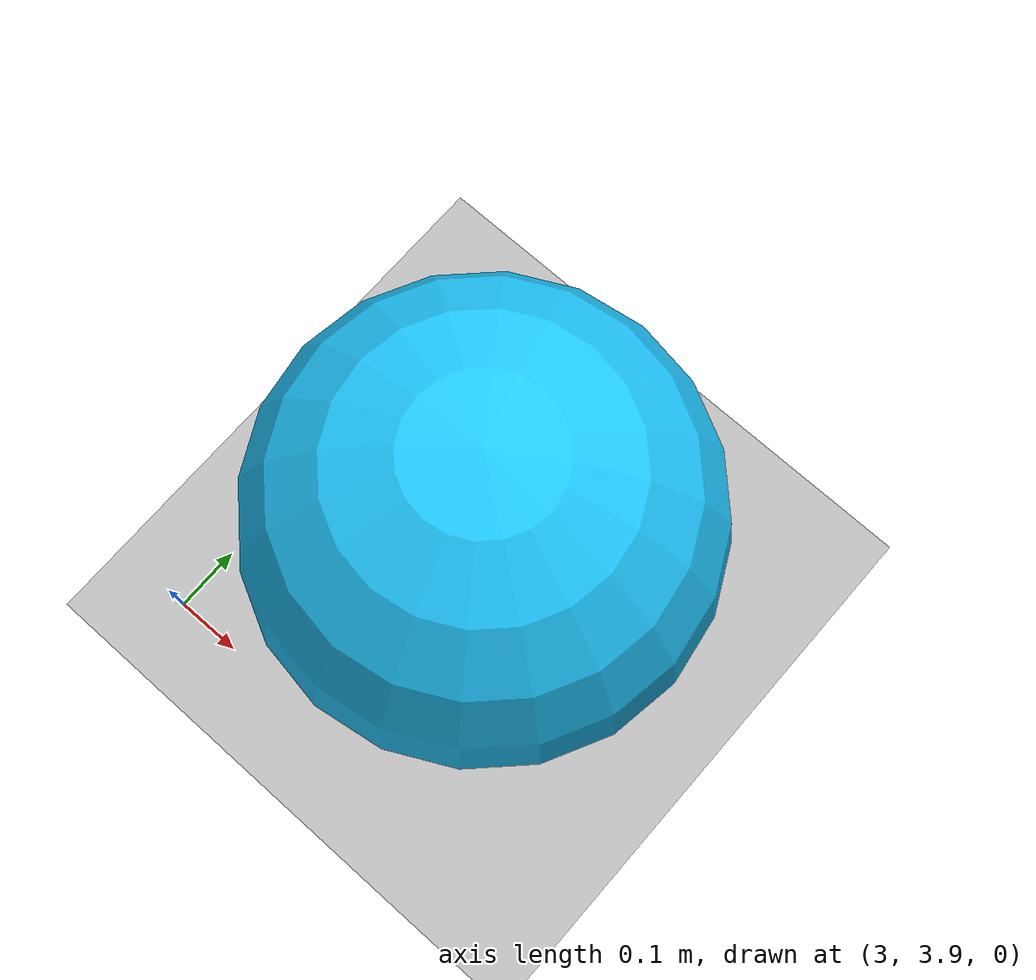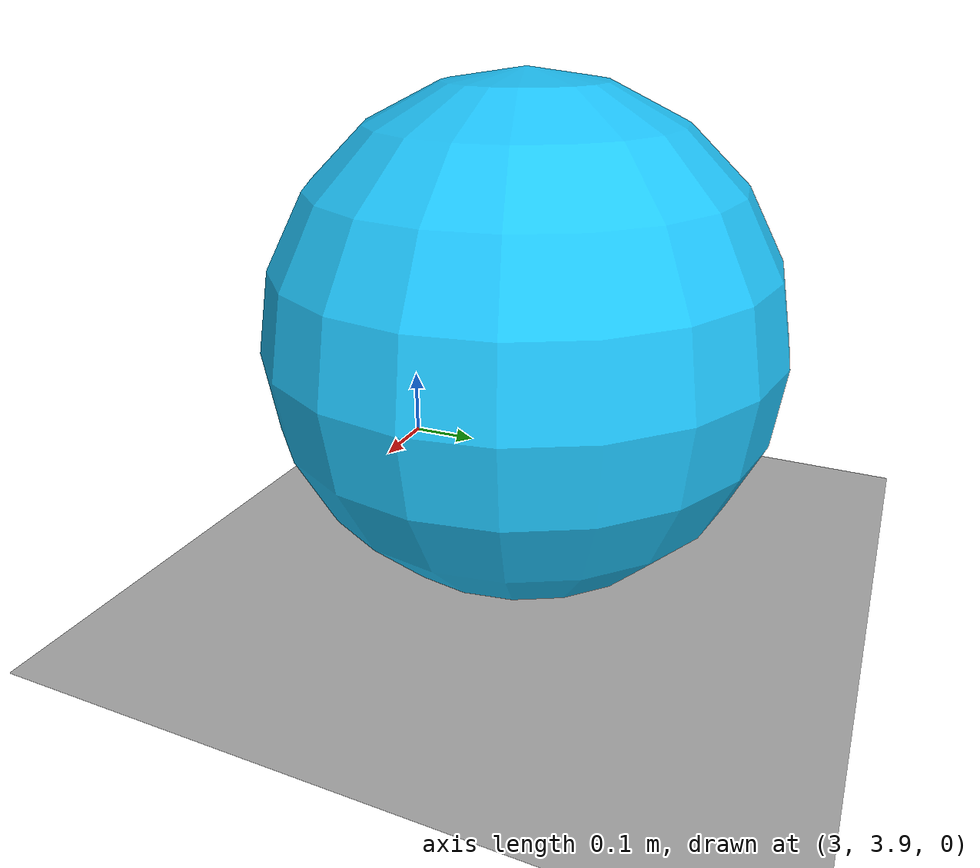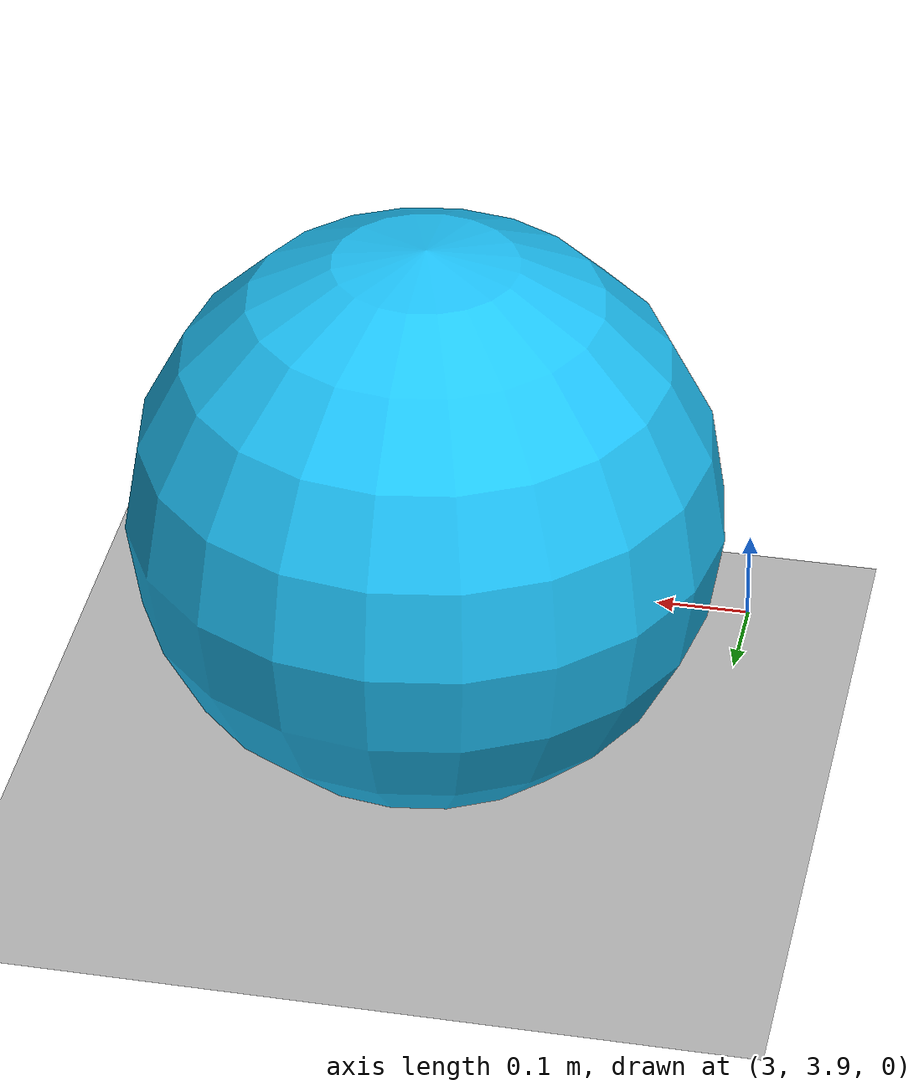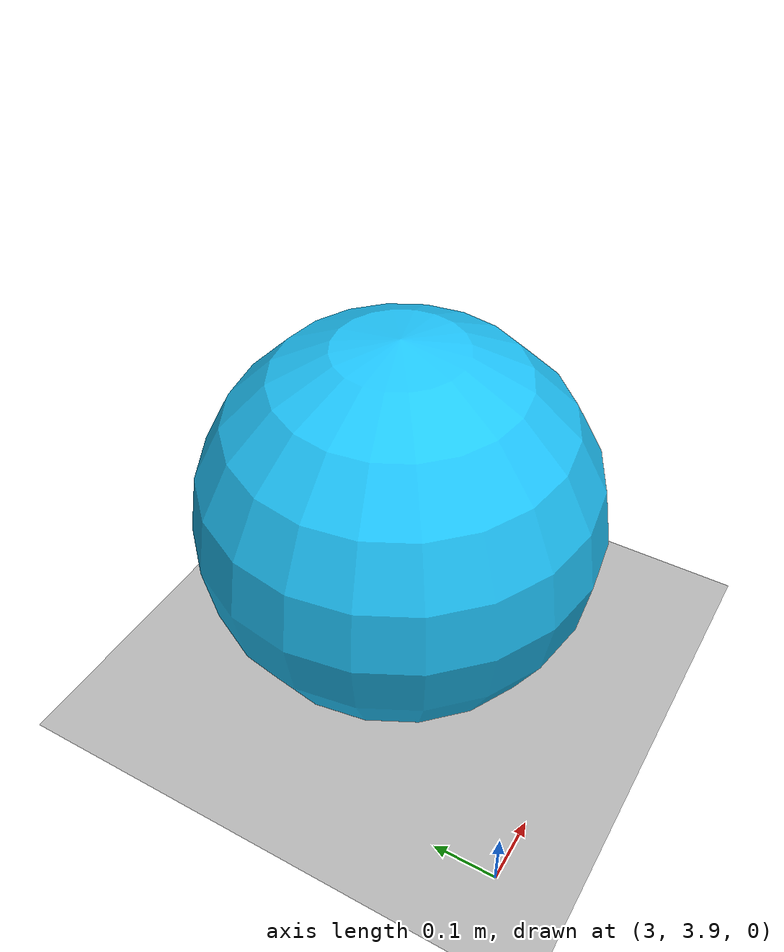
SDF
<sdf version="1.9">
 <world name="default">
  <model name="ground_plane">
   <static>true</static>
   <link name="link">
    <collision name="collision">
     <geometry><plane><normal>0 0 1</normal><size>30 30</size></plane></geometry>
    </collision>
    <visual name="visual">
     <geometry><plane><normal>0 0 1</normal><size>30 30</size></plane></geometry>
     <material><ambient>0.3 0.3 0.3</ambient><diffuse>0.7 0.7 0.7</diffuse></material>
    </visual>
   </link>
  </model>
  <model name="Ball_01_001">
   <static>true</static>
   <include><uri>model://aws_robomaker_residential_Ball_01</uri></include>
   <pose>3.295503 4.225674 0.318684 0 -0 0</pose>
  </model>
 </world>
</sdf>
